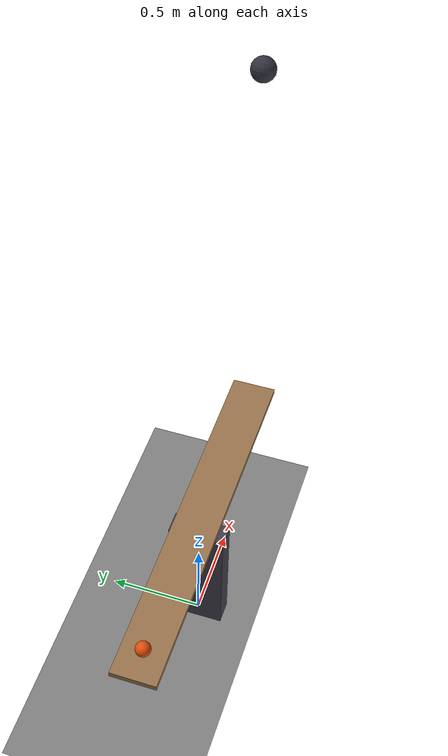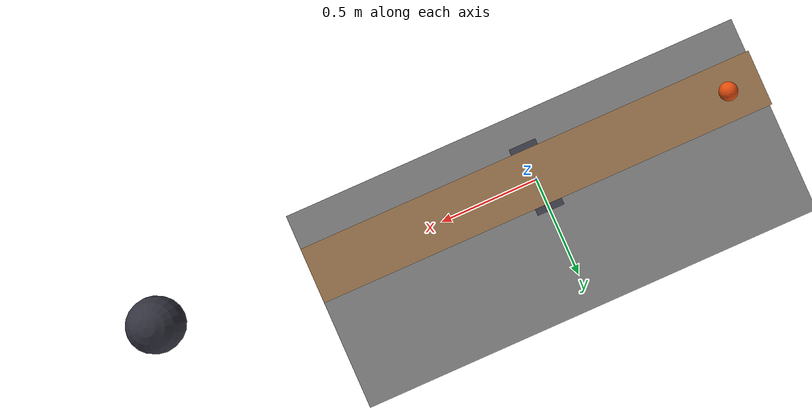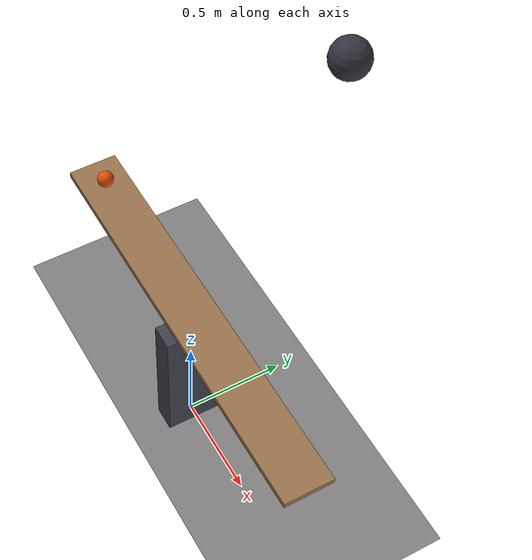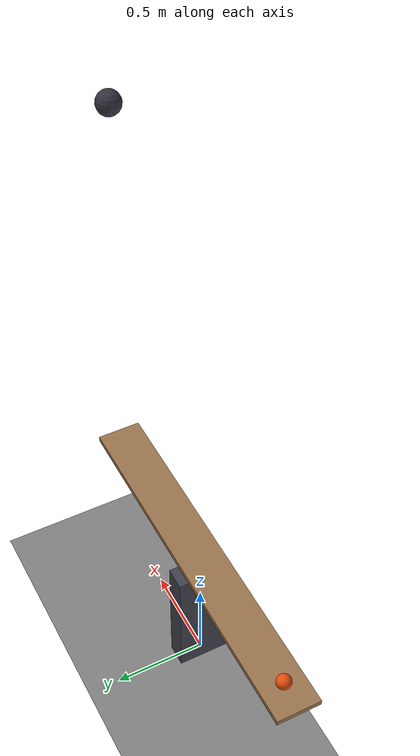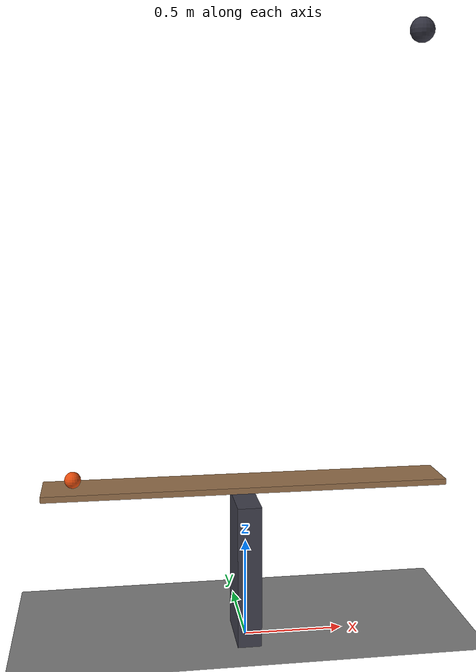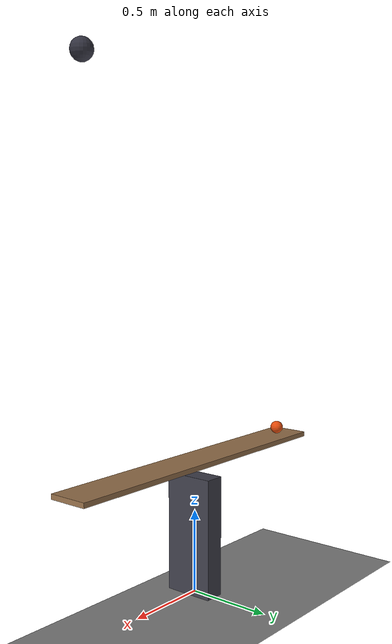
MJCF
<mujoco model="gravity_powered_seesaw">
  <compiler angle="radian"/>
  <option timestep="0.002"/>
  <worldbody>
    <geom name="floor" type="plane" size="8 8 0.1" friction="0.8 0.005 0.002"/>
    <body name="support">
      <geom name="support" type="box" pos="0 0 0.36" size="0.06 0.15 0.36" rgba="0.25 0.25 0.3 1"/>
    </body>
    <body name="seesaw" pos="0 0 0.8">
      <joint name="seesaw_hinge" type="hinge" pos="0 0 0" axis="0 1 0" limited="true" range="0 0.610865" damping="0.01"/>
      <geom name="seesaw" type="box" pos="0 0 0" size="1 0.12 0.015" mass="0.3" friction="0.8 0.005 0.002" solref="0.01 1" rgba="0.6 0.45 0.3 1"/>
    </body>
    <body name="ball" pos="-0.85 0 0.855">
      <freejoint/>
      <geom name="ball" type="sphere" pos="0 0 0" size="0.04" mass="0.1" condim="6" friction="0.8 0.005 0.002" solref="0.01 1" rgba="0.9 0.3 0.05 1"/>
    </body>
    <body name="weight" pos="0.85 0 3">
      <freejoint/>
      <geom name="weight" type="sphere" pos="0 0 0" size="0.06" mass="1" friction="0.8 0.005 0.002" solref="0.01 1" rgba="0.2 0.2 0.25 1"/>
    </body>
  </worldbody>
  <keyframe>
    <key name="start" qpos="0 -0.85 0 0.855 1 0 0 0 0.85 0 3 1 0 0 0" qvel="0 0 0 0 0 0 0 0 0 0 0 0 0"/>
  </keyframe>
</mujoco>
